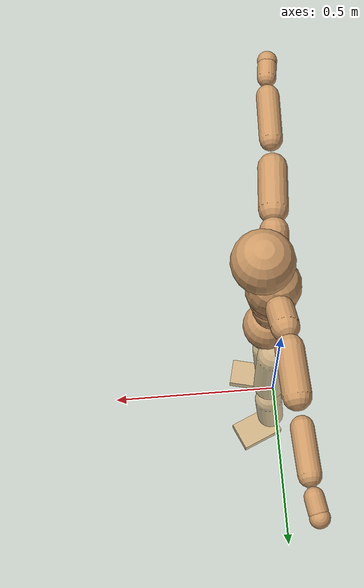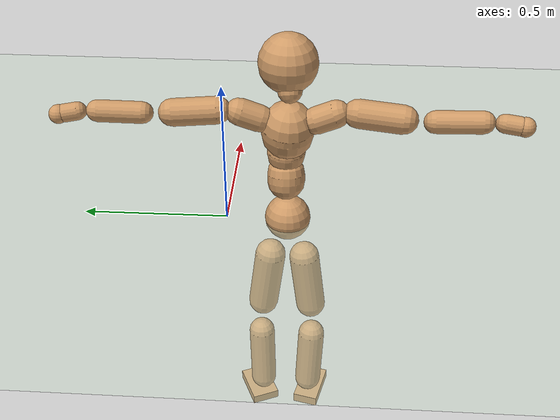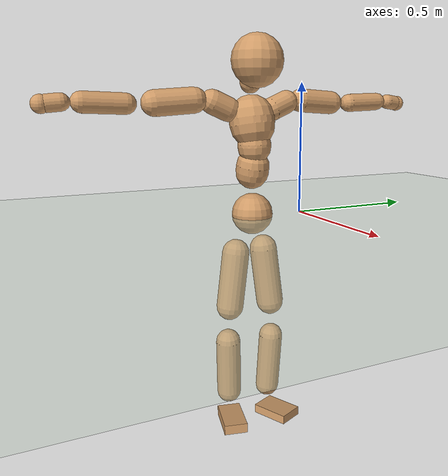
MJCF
<mujoco model="humanoid">
  <compiler coordinate="local" angle="radian"/>
  <default>
    <joint damping="0.0" armature="0.01" stiffness="0.0" limited="true"/>
    <geom conaffinity="1" condim="3" contype="7" margin="0.001" rgba="0.8 0.6 .4 1"/>
  </default>
  <asset>
    <texture type="skybox" builtin="gradient" rgb1=".4 .5 .6" rgb2="0 0 0" width="100" height="100"/>
    <texture builtin="flat" height="1278" mark="cross" markrgb="1 1 1" name="texgeom" random="0.01" rgb1="0.8 0.6 0.4" rgb2="0.8 0.6 0.4" type="cube" width="127"/>
    <texture builtin="checker" height="100" name="texplane" rgb1="0 0 0" rgb2="0.8 0.8 0.8" type="2d" width="100"/>
    <material name="MatPlane" reflectance="0.5" shininess="1" specular="1" texrepeat="60 60" texture="texplane"/>
    <material name="geom" texture="texgeom" texuniform="true"/>
  </asset>
  <worldbody>
    <light cutoff="100" diffuse="1 1 1" dir="-0 0 -1.3" directional="true" exponent="1" pos="0 0 1.3" specular=".1 .1 .1"/>
    <geom conaffinity="1" condim="3" name="floor" pos="0 0 0" rgba="0.8 0.9 0.8 1" size="100 100 .2" type="plane" material="MatPlane"/>
    <body name="Pelvis" pos="-0.0003 -0.2118 0.0099">
      <freejoint name="Pelvis"/>
      <geom type="sphere" contype="1" conaffinity="1" density="500" size="0.0789" pos="0.0000 0.0000 0.0000" name="Pelvis"/>
      <body name="L_Hip" pos="-0.0235 0.05 -0.0738">
        <joint name="L_Hip_x" type="hinge" pos="0 0 0" axis="1 0 0" stiffness="800" damping="80" armature="0.02" range="-180.0000 180.0000"/>
        <joint name="L_Hip_y" type="hinge" pos="0 0 0" axis="0 1 0" stiffness="800" damping="80" armature="0.02" range="-180.0000 180.0000"/>
        <joint name="L_Hip_z" type="hinge" pos="0 0 0" axis="0 0 1" stiffness="800" damping="80" armature="0.02" range="-180.0000 180.0000"/>
        <geom type="capsule" contype="1" conaffinity="1" density="500" fromto="0.0020 0.0094 -0.0750 0.0080 0.0376 -0.3000" size="0.0534" name="L_Hip"/>
        <body name="L_Knee" pos="0.01 0.047 -0.375">
          <joint name="L_Knee_x" type="hinge" pos="0 0 0" axis="1 0 0" stiffness="800" damping="80" armature="0.02" range="-180.0000 180.0000"/>
          <joint name="L_Knee_y" type="hinge" pos="0 0 0" axis="0 1 0" stiffness="800" damping="80" armature="0.02" range="-180.0000 180.0000"/>
          <joint name="L_Knee_z" type="hinge" pos="0 0 0" axis="0 0 1" stiffness="800" damping="80" armature="0.02" range="-180.0000 180.0000"/>
          <geom type="capsule" contype="1" conaffinity="1" density="500" fromto="-0.0061 -0.0020 -0.0770 -0.0243 -0.0081 -0.3078" size="0.0474" name="L_Knee"/>
          <body name="L_Ankle" pos="-0.0303 -0.0101 -0.3848">
            <joint name="L_Ankle_x" type="hinge" pos="0 0 0" axis="1 0 0" stiffness="800" damping="80" armature="0.02" range="-180.0000 180.0000"/>
            <joint name="L_Ankle_y" type="hinge" pos="0 0 0" axis="0 1 0" stiffness="800" damping="80" armature="0.02" range="-180.0000 180.0000"/>
            <joint name="L_Ankle_z" type="hinge" pos="0 0 0" axis="0 0 1" stiffness="800" damping="80" armature="0.02" range="-180.0000 180.0000"/>
            <geom type="box" contype="1" conaffinity="1" density="500" pos="0.0541 0.0239 -0.0278" size="0.0765 0.0511 0.0176" quat="0.9784 0.0000 0.0000 0.2067" name="L_Ankle"/>
            <body name="L_Toe" pos="0.1081 0.0478 -0.0555">
              <joint name="L_Toe_x" type="hinge" pos="0 0 0" axis="1 0 0" stiffness="500" damping="50" armature="0.02" range="-180.0000 180.0000"/>
              <joint name="L_Toe_y" type="hinge" pos="0 0 0" axis="0 1 0" stiffness="500" damping="50" armature="0.02" range="-180.0000 180.0000"/>
              <joint name="L_Toe_z" type="hinge" pos="0 0 0" axis="0 0 1" stiffness="500" damping="50" armature="0.02" range="-180.0000 180.0000"/>
              <geom type="box" contype="1" conaffinity="1" density="500" pos="0.0000 0.0000 0.0297" size="0.001 0.0024 0.001" quat="0.9775 0.0000 0.0000 0.2108" name="L_Toe"/>
            </body>
          </body>
        </body>
      </body>
      <body name="R_Hip" pos="-0.0214 -0.0517 -0.0809">
        <joint name="R_Hip_x" type="hinge" pos="0 0 0" axis="1 0 0" stiffness="800" damping="80" armature="0.02" range="-180.0000 180.0000"/>
        <joint name="R_Hip_y" type="hinge" pos="0 0 0" axis="0 1 0" stiffness="800" damping="80" armature="0.02" range="-180.0000 180.0000"/>
        <joint name="R_Hip_z" type="hinge" pos="0 0 0" axis="0 0 1" stiffness="800" damping="80" armature="0.02" range="-180.0000 180.0000"/>
        <geom type="capsule" contype="1" conaffinity="1" density="500" fromto="-0.0003 -0.0091 -0.0730 -0.0012 -0.0362 -0.2922" size="0.0527" name="R_Hip"/>
        <body name="R_Knee" pos="-0.0015 -0.0453 -0.3652">
          <joint name="R_Knee_x" type="hinge" pos="0 0 0" axis="1 0 0" stiffness="800" damping="80" armature="0.02" range="-180.0000 180.0000"/>
          <joint name="R_Knee_y" type="hinge" pos="0 0 0" axis="0 1 0" stiffness="800" damping="80" armature="0.02" range="-180.0000 180.0000"/>
          <joint name="R_Knee_z" type="hinge" pos="0 0 0" axis="0 0 1" stiffness="800" damping="80" armature="0.02" range="-180.0000 180.0000"/>
          <geom type="capsule" contype="1" conaffinity="1" density="500" fromto="-0.0056 0.0030 -0.0754 -0.0226 0.0122 -0.3018" size="0.0484" name="R_Knee"/>
          <body name="R_Ankle" pos="-0.0282 0.0152 -0.3772">
            <joint name="R_Ankle_x" type="hinge" pos="0 0 0" axis="1 0 0" stiffness="800" damping="80" armature="0.02" range="-180.0000 180.0000"/>
            <joint name="R_Ankle_y" type="hinge" pos="0 0 0" axis="0 1 0" stiffness="800" damping="80" armature="0.02" range="-180.0000 180.0000"/>
            <joint name="R_Ankle_z" type="hinge" pos="0 0 0" axis="0 0 1" stiffness="800" damping="80" armature="0.02" range="-180.0000 180.0000"/>
            <geom type="box" contype="1" conaffinity="1" density="500" pos="0.0582 -0.0139 -0.0292" size="0.0824 0.046 0.0194" quat="0.9932 0.0000 0.0000 -0.1168" name="R_Ankle"/>
            <body name="R_Toe" pos="0.1165 -0.0278 -0.0584">
              <joint name="R_Toe_x" type="hinge" pos="0 0 0" axis="1 0 0" stiffness="500" damping="50" armature="0.02" range="-180.0000 180.0000"/>
              <joint name="R_Toe_y" type="hinge" pos="0 0 0" axis="0 1 0" stiffness="500" damping="50" armature="0.02" range="-180.0000 180.0000"/>
              <joint name="R_Toe_z" type="hinge" pos="0 0 0" axis="0 0 1" stiffness="500" damping="50" armature="0.02" range="-180.0000 180.0000"/>
              <geom type="box" contype="1" conaffinity="1" density="500" pos="0.0000 0.0000 0.0312" size="0.0009 0.0022 0.0011" quat="0.9943 0.0000 0.0000 -0.1070" name="R_Toe"/>
            </body>
          </body>
        </body>
      </body>
      <body name="Torso" pos="-0.0231 0.0038 0.1071">
        <joint name="Torso_x" type="hinge" pos="0 0 0" axis="1 0 0" stiffness="1000" damping="100" armature="0.02" range="-180.0000 180.0000"/>
        <joint name="Torso_y" type="hinge" pos="0 0 0" axis="0 1 0" stiffness="1000" damping="100" armature="0.02" range="-180.0000 180.0000"/>
        <joint name="Torso_z" type="hinge" pos="0 0 0" axis="0 0 1" stiffness="1000" damping="100" armature="0.02" range="-180.0000 180.0000"/>
        <geom type="capsule" contype="1" conaffinity="1" density="500" fromto="0.0170 0.0021 0.0760 0.0113 0.0014 0.0507" size="0.0631" name="Torso"/>
        <body name="Spine" pos="0.0283 0.0036 0.1267">
          <joint name="Spine_x" type="hinge" pos="0 0 0" axis="1 0 0" stiffness="1000" damping="100" armature="0.02" range="-180.0000 180.0000"/>
          <joint name="Spine_y" type="hinge" pos="0 0 0" axis="0 1 0" stiffness="1000" damping="100" armature="0.02" range="-180.0000 180.0000"/>
          <joint name="Spine_z" type="hinge" pos="0 0 0" axis="0 0 1" stiffness="1000" damping="100" armature="0.02" range="-180.0000 180.0000"/>
          <geom type="capsule" contype="1" conaffinity="1" density="500" fromto="0.0001 -0.0010 0.0303 0.0001 -0.0007 0.0202" size="0.0633" name="Spine"/>
          <body name="Chest" pos="0.0001 -0.0017 0.0504">
            <joint name="Chest_x" type="hinge" pos="0 0 0" axis="1 0 0" stiffness="1000" damping="100" armature="0.02" range="-180.0000 180.0000"/>
            <joint name="Chest_y" type="hinge" pos="0 0 0" axis="0 1 0" stiffness="1000" damping="100" armature="0.02" range="-180.0000 180.0000"/>
            <joint name="Chest_z" type="hinge" pos="0 0 0" axis="0 0 1" stiffness="1000" damping="100" armature="0.02" range="-180.0000 180.0000"/>
            <geom type="capsule" contype="1" conaffinity="1" density="500" fromto="-0.0111 -0.0052 0.0764 -0.0074 -0.0035 0.0510" size="0.0855" name="Chest"/>
            <body name="Neck" pos="-0.0196 -0.0125 0.1854">
              <joint name="Neck_x" type="hinge" pos="0 0 0" axis="1 0 0" stiffness="500" damping="50" armature="0.02" range="-180.0000 180.0000"/>
              <joint name="Neck_y" type="hinge" pos="0 0 0" axis="0 1 0" stiffness="500" damping="50" armature="0.02" range="-180.0000 180.0000"/>
              <joint name="Neck_z" type="hinge" pos="0 0 0" axis="0 0 1" stiffness="500" damping="50" armature="0.02" range="-180.0000 180.0000"/>
              <geom type="capsule" contype="1" conaffinity="1" density="500" fromto="0.0101 0.0020 0.0186 0.0403 0.0079 0.0744" size="0.0401" name="Neck"/>
              <body name="Head" pos="0.0503 0.0098 0.093">
                <joint name="Head_x" type="hinge" pos="0 0 0" axis="1 0 0" stiffness="500" damping="50" armature="0.02" range="-180.0000 180.0000"/>
                <joint name="Head_y" type="hinge" pos="0 0 0" axis="0 1 0" stiffness="500" damping="50" armature="0.02" range="-180.0000 180.0000"/>
                <joint name="Head_z" type="hinge" pos="0 0 0" axis="0 0 1" stiffness="500" damping="50" armature="0.02" range="-180.0000 180.0000"/>
                <geom type="sphere" contype="1" conaffinity="1" density="500" size="0.0963" pos="0.0000 0.0000 0.0000" name="Head"/>
              </body>
            </body>
            <body name="L_Thorax" pos="-0.0161 0.0626 0.0984">
              <joint name="L_Thorax_x" type="hinge" pos="0 0 0" axis="1 0 0" stiffness="500" damping="50" armature="0.02" range="-180.0000 180.0000"/>
              <joint name="L_Thorax_y" type="hinge" pos="0 0 0" axis="0 1 0" stiffness="500" damping="50" armature="0.02" range="-180.0000 180.0000"/>
              <joint name="L_Thorax_z" type="hinge" pos="0 0 0" axis="0 0 1" stiffness="500" damping="50" armature="0.02" range="-180.0000 180.0000"/>
              <geom type="capsule" contype="1" conaffinity="1" density="500" fromto="-0.0025 0.0216 0.0088 -0.0100 0.0865 0.0352" size="0.0441" name="L_Thorax"/>
              <body name="L_Shoulder" pos="-0.0125 0.1081 0.044">
                <joint name="L_Shoulder_x" type="hinge" pos="0 0 0" axis="1 0 0" stiffness="500" damping="50" armature="0.02" range="-720.0000 720.0000"/>
                <joint name="L_Shoulder_y" type="hinge" pos="0 0 0" axis="0 1 0" stiffness="500" damping="50" armature="0.02" range="-720.0000 720.0000"/>
                <joint name="L_Shoulder_z" type="hinge" pos="0 0 0" axis="0 0 1" stiffness="500" damping="50" armature="0.02" range="-720.0000 720.0000"/>
                <geom type="capsule" contype="1" conaffinity="1" density="500" fromto="-0.0026 0.0473 -0.0029 -0.0105 0.1894 -0.0116" size="0.0446" name="L_Shoulder"/>
                <body name="L_Elbow" pos="-0.0132 0.2367 -0.0145">
                  <joint name="L_Elbow_x" type="hinge" pos="0 0 0" axis="1 0 0" stiffness="500" damping="50" armature="0.02" range="-720.0000 720.0000"/>
                  <joint name="L_Elbow_y" type="hinge" pos="0 0 0" axis="0 1 0" stiffness="500" damping="50" armature="0.02" range="-720.0000 720.0000"/>
                  <joint name="L_Elbow_z" type="hinge" pos="0 0 0" axis="0 0 1" stiffness="500" damping="50" armature="0.02" range="-720.0000 720.0000"/>
                  <geom type="capsule" contype="1" conaffinity="1" density="500" fromto="-0.0022 0.0472 0.0018 -0.0088 0.1889 0.0070" size="0.0353" name="L_Elbow"/>
                  <body name="L_Wrist" pos="-0.0111 0.2361 0.0088">
                    <joint name="L_Wrist_x" type="hinge" pos="0 0 0" axis="1 0 0" stiffness="300" damping="30" armature="0.02" range="-180.0000 180.0000"/>
                    <joint name="L_Wrist_y" type="hinge" pos="0 0 0" axis="0 1 0" stiffness="300" damping="30" armature="0.02" range="-180.0000 180.0000"/>
                    <joint name="L_Wrist_z" type="hinge" pos="0 0 0" axis="0 0 1" stiffness="300" damping="30" armature="0.02" range="-180.0000 180.0000"/>
                    <geom type="capsule" contype="1" conaffinity="1" density="500" fromto="-0.0027 0.0150 -0.0018 -0.0108 0.0600 -0.0074" size="0.0292" name="L_Wrist"/>
                    <body name="L_Hand" pos="-0.0135 0.0749 -0.0092">
                      <joint name="L_Hand_x" type="hinge" pos="0 0 0" axis="1 0 0" stiffness="300" damping="30" armature="0.02" range="-180.0000 180.0000"/>
                      <joint name="L_Hand_y" type="hinge" pos="0 0 0" axis="0 1 0" stiffness="300" damping="30" armature="0.02" range="-180.0000 180.0000"/>
                      <joint name="L_Hand_z" type="hinge" pos="0 0 0" axis="0 0 1" stiffness="300" damping="30" armature="0.02" range="-180.0000 180.0000"/>
                      <geom type="sphere" contype="1" conaffinity="1" density="500" size="0.0307" pos="0.0000 0.0000 0.0000" name="L_Hand"/>
                    </body>
                  </body>
                </body>
              </body>
            </body>
            <body name="R_Thorax" pos="-0.0196 -0.0761 0.0984">
              <joint name="R_Thorax_x" type="hinge" pos="0 0 0" axis="1 0 0" stiffness="500" damping="50" armature="0.02" range="-180.0000 180.0000"/>
              <joint name="R_Thorax_y" type="hinge" pos="0 0 0" axis="0 1 0" stiffness="500" damping="50" armature="0.02" range="-180.0000 180.0000"/>
              <joint name="R_Thorax_z" type="hinge" pos="0 0 0" axis="0 0 1" stiffness="500" damping="50" armature="0.02" range="-180.0000 180.0000"/>
              <geom type="capsule" contype="1" conaffinity="1" density="500" fromto="-0.0008 -0.0203 0.0090 -0.0034 -0.0811 0.0361" size="0.0451" name="R_Thorax"/>
              <body name="R_Shoulder" pos="-0.0042 -0.1014 0.0452">
                <joint name="R_Shoulder_x" type="hinge" pos="0 0 0" axis="1 0 0" stiffness="500" damping="50" armature="0.02" range="-720.0000 720.0000"/>
                <joint name="R_Shoulder_y" type="hinge" pos="0 0 0" axis="0 1 0" stiffness="500" damping="50" armature="0.02" range="-720.0000 720.0000"/>
                <joint name="R_Shoulder_z" type="hinge" pos="0 0 0" axis="0 0 1" stiffness="500" damping="50" armature="0.02" range="-720.0000 720.0000"/>
                <geom type="capsule" contype="1" conaffinity="1" density="500" fromto="-0.0038 -0.0479 -0.0034 -0.0152 -0.1915 -0.0137" size="0.0465" name="R_Shoulder"/>
                <body name="R_Elbow" pos="-0.019 -0.2394 -0.0171">
                  <joint name="R_Elbow_x" type="hinge" pos="0 0 0" axis="1 0 0" stiffness="500" damping="50" armature="0.02" range="-720.0000 720.0000"/>
                  <joint name="R_Elbow_y" type="hinge" pos="0 0 0" axis="0 1 0" stiffness="500" damping="50" armature="0.02" range="-720.0000 720.0000"/>
                  <joint name="R_Elbow_z" type="hinge" pos="0 0 0" axis="0 0 1" stiffness="500" damping="50" armature="0.02" range="-720.0000 720.0000"/>
                  <geom type="capsule" contype="1" conaffinity="1" density="500" fromto="-0.0013 -0.0492 0.0018 -0.0051 -0.1969 0.0073" size="0.0366" name="R_Elbow"/>
                  <body name="R_Wrist" pos="-0.0064 -0.2461 0.0091">
                    <joint name="R_Wrist_x" type="hinge" pos="0 0 0" axis="1 0 0" stiffness="300" damping="30" armature="0.02" range="-180.0000 180.0000"/>
                    <joint name="R_Wrist_y" type="hinge" pos="0 0 0" axis="0 1 0" stiffness="300" damping="30" armature="0.02" range="-180.0000 180.0000"/>
                    <joint name="R_Wrist_z" type="hinge" pos="0 0 0" axis="0 0 1" stiffness="300" damping="30" armature="0.02" range="-180.0000 180.0000"/>
                    <geom type="capsule" contype="1" conaffinity="1" density="500" fromto="-0.0018 -0.0156 -0.0015 -0.0073 -0.0624 -0.0059" size="0.0303" name="R_Wrist"/>
                    <body name="R_Hand" pos="-0.0092 -0.078 -0.0074">
                      <joint name="R_Hand_x" type="hinge" pos="0 0 0" axis="1 0 0" stiffness="300" damping="30" armature="0.02" range="-180.0000 180.0000"/>
                      <joint name="R_Hand_y" type="hinge" pos="0 0 0" axis="0 1 0" stiffness="300" damping="30" armature="0.02" range="-180.0000 180.0000"/>
                      <joint name="R_Hand_z" type="hinge" pos="0 0 0" axis="0 0 1" stiffness="300" damping="30" armature="0.02" range="-180.0000 180.0000"/>
                      <geom type="sphere" contype="1" conaffinity="1" density="500" size="0.0317" pos="0.0000 0.0000 0.0000" name="R_Hand"/>
                    </body>
                  </body>
                </body>
              </body>
            </body>
          </body>
        </body>
      </body>
    </body>
  </worldbody>
  <actuator>
    <motor name="L_Hip_x" joint="L_Hip_x" gear="500"/>
    <motor name="L_Hip_y" joint="L_Hip_y" gear="500"/>
    <motor name="L_Hip_z" joint="L_Hip_z" gear="500"/>
    <motor name="L_Knee_x" joint="L_Knee_x" gear="500"/>
    <motor name="L_Knee_y" joint="L_Knee_y" gear="500"/>
    <motor name="L_Knee_z" joint="L_Knee_z" gear="500"/>
    <motor name="L_Ankle_x" joint="L_Ankle_x" gear="500"/>
    <motor name="L_Ankle_y" joint="L_Ankle_y" gear="500"/>
    <motor name="L_Ankle_z" joint="L_Ankle_z" gear="500"/>
    <motor name="L_Toe_x" joint="L_Toe_x" gear="500"/>
    <motor name="L_Toe_y" joint="L_Toe_y" gear="500"/>
    <motor name="L_Toe_z" joint="L_Toe_z" gear="500"/>
    <motor name="R_Hip_x" joint="R_Hip_x" gear="500"/>
    <motor name="R_Hip_y" joint="R_Hip_y" gear="500"/>
    <motor name="R_Hip_z" joint="R_Hip_z" gear="500"/>
    <motor name="R_Knee_x" joint="R_Knee_x" gear="500"/>
    <motor name="R_Knee_y" joint="R_Knee_y" gear="500"/>
    <motor name="R_Knee_z" joint="R_Knee_z" gear="500"/>
    <motor name="R_Ankle_x" joint="R_Ankle_x" gear="500"/>
    <motor name="R_Ankle_y" joint="R_Ankle_y" gear="500"/>
    <motor name="R_Ankle_z" joint="R_Ankle_z" gear="500"/>
    <motor name="R_Toe_x" joint="R_Toe_x" gear="500"/>
    <motor name="R_Toe_y" joint="R_Toe_y" gear="500"/>
    <motor name="R_Toe_z" joint="R_Toe_z" gear="500"/>
    <motor name="Torso_x" joint="Torso_x" gear="500"/>
    <motor name="Torso_y" joint="Torso_y" gear="500"/>
    <motor name="Torso_z" joint="Torso_z" gear="500"/>
    <motor name="Spine_x" joint="Spine_x" gear="500"/>
    <motor name="Spine_y" joint="Spine_y" gear="500"/>
    <motor name="Spine_z" joint="Spine_z" gear="500"/>
    <motor name="Chest_x" joint="Chest_x" gear="500"/>
    <motor name="Chest_y" joint="Chest_y" gear="500"/>
    <motor name="Chest_z" joint="Chest_z" gear="500"/>
    <motor name="Neck_x" joint="Neck_x" gear="500"/>
    <motor name="Neck_y" joint="Neck_y" gear="500"/>
    <motor name="Neck_z" joint="Neck_z" gear="500"/>
    <motor name="Head_x" joint="Head_x" gear="500"/>
    <motor name="Head_y" joint="Head_y" gear="500"/>
    <motor name="Head_z" joint="Head_z" gear="500"/>
    <motor name="L_Thorax_x" joint="L_Thorax_x" gear="500"/>
    <motor name="L_Thorax_y" joint="L_Thorax_y" gear="500"/>
    <motor name="L_Thorax_z" joint="L_Thorax_z" gear="500"/>
    <motor name="L_Shoulder_x" joint="L_Shoulder_x" gear="500"/>
    <motor name="L_Shoulder_y" joint="L_Shoulder_y" gear="500"/>
    <motor name="L_Shoulder_z" joint="L_Shoulder_z" gear="500"/>
    <motor name="L_Elbow_x" joint="L_Elbow_x" gear="500"/>
    <motor name="L_Elbow_y" joint="L_Elbow_y" gear="500"/>
    <motor name="L_Elbow_z" joint="L_Elbow_z" gear="500"/>
    <motor name="L_Wrist_x" joint="L_Wrist_x" gear="500"/>
    <motor name="L_Wrist_y" joint="L_Wrist_y" gear="500"/>
    <motor name="L_Wrist_z" joint="L_Wrist_z" gear="500"/>
    <motor name="L_Hand_x" joint="L_Hand_x" gear="500"/>
    <motor name="L_Hand_y" joint="L_Hand_y" gear="500"/>
    <motor name="L_Hand_z" joint="L_Hand_z" gear="500"/>
    <motor name="R_Thorax_x" joint="R_Thorax_x" gear="500"/>
    <motor name="R_Thorax_y" joint="R_Thorax_y" gear="500"/>
    <motor name="R_Thorax_z" joint="R_Thorax_z" gear="500"/>
    <motor name="R_Shoulder_x" joint="R_Shoulder_x" gear="500"/>
    <motor name="R_Shoulder_y" joint="R_Shoulder_y" gear="500"/>
    <motor name="R_Shoulder_z" joint="R_Shoulder_z" gear="500"/>
    <motor name="R_Elbow_x" joint="R_Elbow_x" gear="500"/>
    <motor name="R_Elbow_y" joint="R_Elbow_y" gear="500"/>
    <motor name="R_Elbow_z" joint="R_Elbow_z" gear="500"/>
    <motor name="R_Wrist_x" joint="R_Wrist_x" gear="500"/>
    <motor name="R_Wrist_y" joint="R_Wrist_y" gear="500"/>
    <motor name="R_Wrist_z" joint="R_Wrist_z" gear="500"/>
    <motor name="R_Hand_x" joint="R_Hand_x" gear="500"/>
    <motor name="R_Hand_y" joint="R_Hand_y" gear="500"/>
    <motor name="R_Hand_z" joint="R_Hand_z" gear="500"/>
  </actuator>
  <contact>
    <exclude body1="Torso" body2="Chest"/>
    <exclude body1="Head" body2="Chest"/>
    <exclude body1="R_Knee" body2="R_Toe"/>
    <exclude body1="R_Knee" body2="L_Ankle"/>
    <exclude body1="R_Knee" body2="L_Toe"/>
    <exclude body1="L_Knee" body2="L_Toe"/>
    <exclude body1="L_Knee" body2="R_Ankle"/>
    <exclude body1="L_Knee" body2="R_Toe"/>
    <exclude body1="L_Shoulder" body2="Chest"/>
    <exclude body1="R_Shoulder" body2="Chest"/>
  </contact>
  <sensor/>
  <size njmax="700" nconmax="700"/>
</mujoco>
